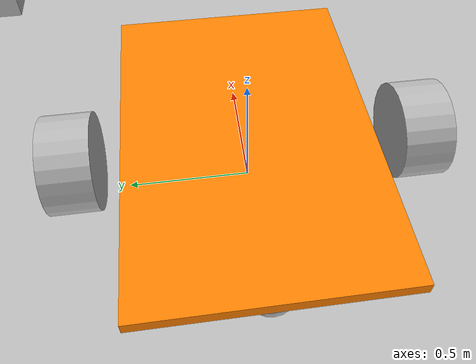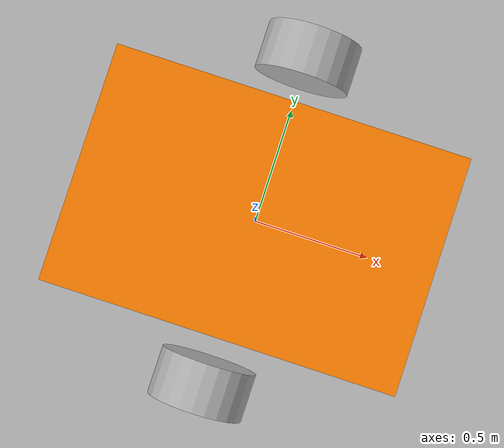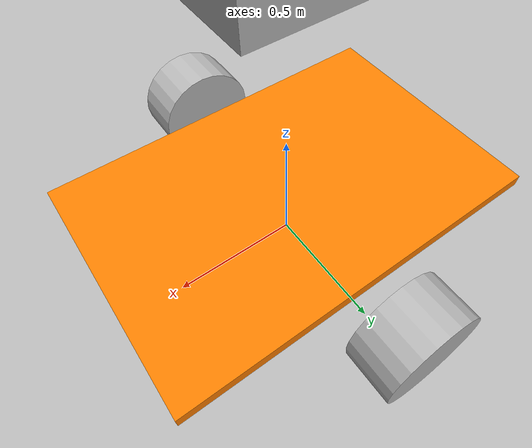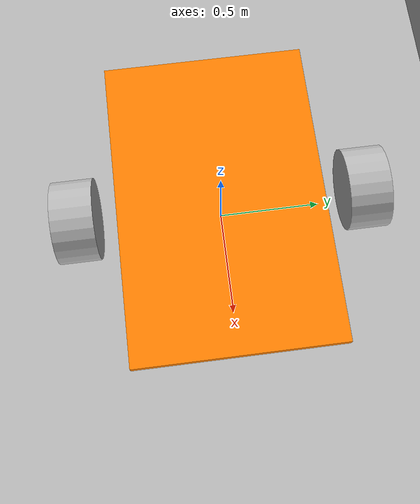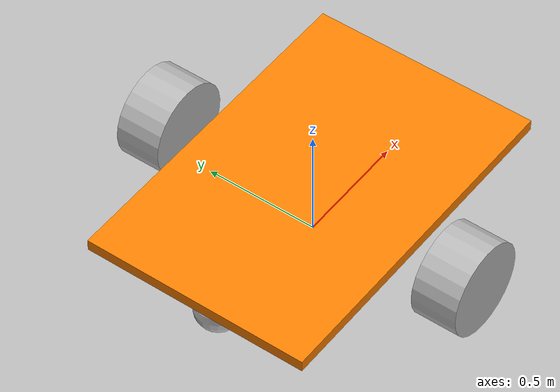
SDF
<?xml version="1.0" ?>
<sdf version="1.7">
  <world name="default">
    <gravity>0 0 -9.8</gravity>

    <!-- Suelo con colisión del .obj -->
    <model name="custom_ground">
      <static>true</static>
      <link name="link">

        <!-- Colisión usando el mismo .obj -->
        <collision name="ground_collision">
          <pose>0 0 0 1.5707 0 0</pose>
          <geometry>
            <mesh>
              <uri>file://meshes/pisocuatro.obj</uri>
              <scale>1 1 1</scale>
            </mesh>
          </geometry>
          <surface>
            <friction>
              <ode><mu>5.0</mu><mu2>5.0</mu2></ode>
            </friction>
          </surface>
        </collision>

        <!-- Visual: mismo .obj -->
        <visual name="ground_visual">
          <pose>0 0 0 1.5707 0 0</pose>
          <geometry>
            <mesh>
              <uri>file://meshes/pisocuatro.obj</uri>
              <scale>1 1 1</scale>
            </mesh>
          </geometry>
        </visual>

      </link>
    </model>

    <!-- Bolitabot -->
    <model name="bolitabot">
      <pose>0 0 0 0 0 0</pose>
      <static>false</static>

      <link name="chassis">
        <pose>0 0 0.25 0 0 0</pose>
        <inertial>
          <mass>5.0</mass>
          <inertia>
            <ixx>0.1</ixx><iyy>0.1</iyy><izz>0.1</izz>
          </inertia>
        </inertial>
        <visual name="visual">
          <geometry>
            <box><size>1.5 1.0 0.05</size></box>
          </geometry>
          <material>
            <ambient>1 0.5 0 1</ambient>
            <diffuse>1 0.5 0 1</diffuse>
          </material>
        </visual>
        <collision name="collision">
          <geometry>
            <box><size>1.5 1.0 0.1</size></box>
          </geometry>
        </collision>
      </link>

      <link name="left_wheel">
        <pose>0 0.7 0.18 1.57 0 0</pose>
        <inertial>
          <mass>0.5</mass>
          <inertia>
            <ixx>0.01</ixx><iyy>0.01</iyy><izz>0.01</izz>
          </inertia>
        </inertial>
        <collision name="collision">
          <geometry>
            <cylinder><radius>0.2</radius><length>0.2</length></cylinder>
          </geometry>
          <surface>
            <friction>
              <ode><mu>5.0</mu><mu2>5.0</mu2></ode>
            </friction>
          </surface>
        </collision>
        <visual name="visual">
          <geometry>
            <cylinder><radius>0.2</radius><length>0.2</length></cylinder>
          </geometry>
        </visual>
      </link>

      <link name="right_wheel">
        <pose>0 -0.7 0.18 1.57 0 0</pose>
        <inertial>
          <mass>0.5</mass>
          <inertia>
            <ixx>0.01</ixx><iyy>0.01</iyy><izz>0.01</izz>
          </inertia>
        </inertial>
        <collision name="collision">
          <geometry>
            <cylinder><radius>0.2</radius><length>0.2</length></cylinder>
          </geometry>
          <surface>
            <friction>
              <ode><mu>5.0</mu><mu2>5.0</mu2></ode>
            </friction>
          </surface>
        </collision>
        <visual name="visual">
          <geometry>
            <cylinder><radius>0.2</radius><length>0.2</length></cylinder>
          </geometry>
        </visual>
      </link>

      <link name="caster">
        <pose>-0.6 0 0.1 0 0 0</pose>
        <inertial>
          <mass>0.1</mass>
          <inertia>
            <ixx>0.001</ixx><iyy>0.001</iyy><izz>0.001</izz>
          </inertia>
        </inertial>
        <collision name="collision">
          <geometry>
            <sphere><radius>0.1</radius></sphere>
          </geometry>
        </collision>
        <visual name="visual">
          <geometry>
            <sphere><radius>0.1</radius></sphere>
          </geometry>
        </visual>
      </link>

      <joint name="left_wheel_joint" type="revolute">
        <parent>chassis</parent>
        <child>left_wheel</child>
        <axis>
          <xyz>0 0 1</xyz>
          <dynamics><damping>0.2</damping><friction>0.2</friction></dynamics>
        </axis>
      </joint>

      <joint name="right_wheel_joint" type="revolute">
        <parent>chassis</parent>
        <child>right_wheel</child>
        <axis>
          <xyz>0 0 1</xyz>
          <dynamics><damping>0.2</damping><friction>0.2</friction></dynamics>
        </axis>
      </joint>

      <joint name="caster_joint" type="ball">
        <parent>chassis</parent>
        <child>caster</child>
      </joint>

      <plugin
        filename="gz-sim-diff-drive-system"
        name="gz::sim::systems::DiffDrive">
        <left_joint>left_wheel_joint</left_joint>
        <right_joint>right_wheel_joint</right_joint>
        <wheel_separation>1.4</wheel_separation>
        <wheel_radius>0.2</wheel_radius>
        <topic>/model/bolitabot/cmd_vel</topic>
        <odom_topic>/model/bolitabot/odometry</odom_topic>
        <tf_topic>/model/bolitabot/tf</tf_topic>
      </plugin>

    </model>
  </world>
</sdf>
